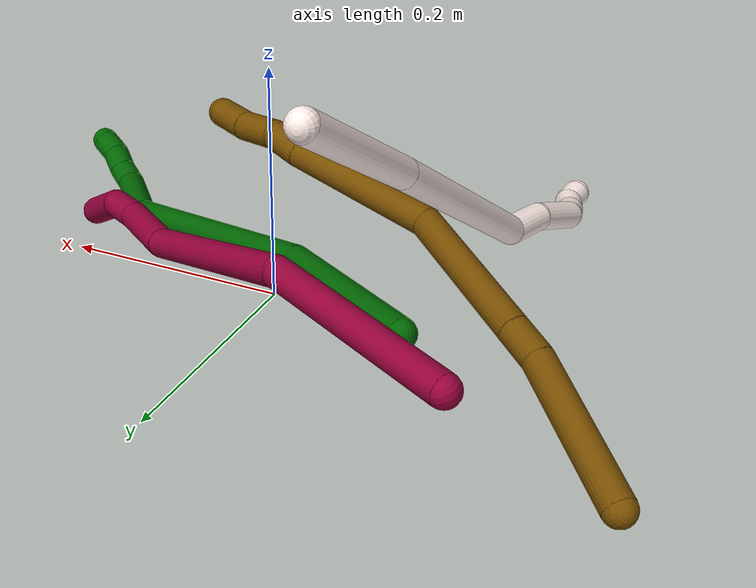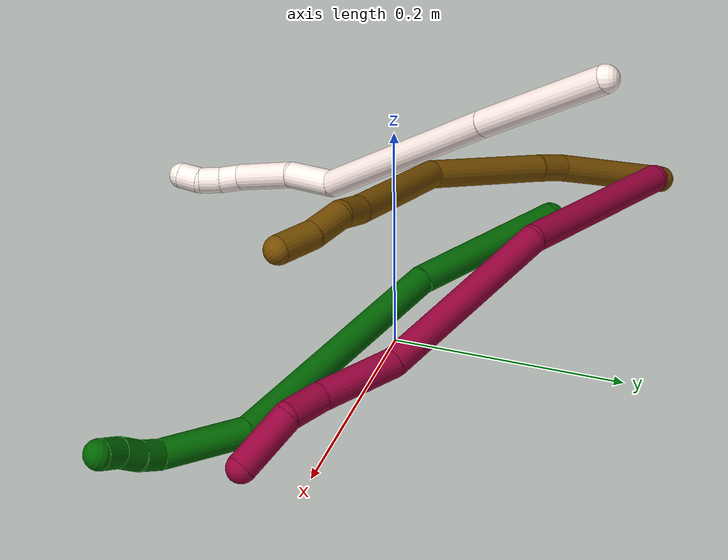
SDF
<sdf version="1.7">
 <world name="default">
  <model name="6">
   <static>0</static>
   <link name="6">
    <collision name="collision-cylinder-e_1_1_4">
     <pose>0.026106 -0.035467 0.059513 0.537443 0.36036 0.100241</pose>
     <geometry><cylinder><radius>0.0125</radius><length>0.148071</length></cylinder></geometry>
     <surface>
      <friction><ode><mu>1.16</mu><mu2>1.16</mu2><slip1>0</slip1><slip2>0</slip2></ode></friction>
      <contact><ode><kp>1e+06</kp><kd>1</kd><max_vel>0</max_vel><min_depth>0.001</min_depth></ode></contact>
     </surface>
    </collision>
    <visual name="visual-cylinder-e_1_1_4">
     <pose>0.026106 -0.035467 0.059513 0.537443 0.36036 0.100241</pose>
     <geometry><cylinder><radius>0.0125</radius><length>0.148071</length></cylinder></geometry>
     <material><ambient>0 0.392157 0.003922 1</ambient></material>
    </visual>
    <collision name="collision-cylinder-e_2_4_5">
     <pose>0.11264 -0.123166 0.194475 0.605526 0.582346 0.186682</pose>
     <geometry><cylinder><radius>0.0125</radius><length>0.219747</length></cylinder></geometry>
     <surface>
      <friction><ode><mu>1.16</mu><mu2>1.16</mu2><slip1>0</slip1><slip2>0</slip2></ode></friction>
      <contact><ode><kp>1e+06</kp><kd>1</kd><max_vel>0</max_vel><min_depth>0.001</min_depth></ode></contact>
     </surface>
    </collision>
    <visual name="visual-cylinder-e_2_4_5">
     <pose>0.11264 -0.123166 0.194475 0.605526 0.582346 0.186682</pose>
     <geometry><cylinder><radius>0.0125</radius><length>0.219747</length></cylinder></geometry>
     <material><ambient>0 0.392157 0.003922 1</ambient></material>
    </visual>
    <collision name="collision-cylinder-e_3_5_6">
     <pose>0.176782 -0.193529 0.300666 0.532873 0.103653 0.028313</pose>
     <geometry><cylinder><radius>0.0125</radius><length>0.071768</length></cylinder></geometry>
     <surface>
      <friction><ode><mu>1.16</mu><mu2>1.16</mu2><slip1>0</slip1><slip2>0</slip2></ode></friction>
      <contact><ode><kp>1e+06</kp><kd>1</kd><max_vel>0</max_vel><min_depth>0.001</min_depth></ode></contact>
     </surface>
    </collision>
    <visual name="visual-cylinder-e_3_5_6">
     <pose>0.176782 -0.193529 0.300666 0.532873 0.103653 0.028313</pose>
     <geometry><cylinder><radius>0.0125</radius><length>0.071768</length></cylinder></geometry>
     <material><ambient>0 0.392157 0.003922 1</ambient></material>
    </visual>
    <collision name="collision-cylinder-e_4_6_7">
     <pose>0.183158 -0.212122 0.341243 0.046827 0.264182 0.006223</pose>
     <geometry><cylinder><radius>0.0125</radius><length>0.020397</length></cylinder></geometry>
     <surface>
      <friction><ode><mu>1.16</mu><mu2>1.16</mu2><slip1>0</slip1><slip2>0</slip2></ode></friction>
      <contact><ode><kp>1e+06</kp><kd>1</kd><max_vel>0</max_vel><min_depth>0.001</min_depth></ode></contact>
     </surface>
    </collision>
    <visual name="visual-cylinder-e_4_6_7">
     <pose>0.183158 -0.212122 0.341243 0.046827 0.264182 0.006223</pose>
     <geometry><cylinder><radius>0.0125</radius><length>0.020397</length></cylinder></geometry>
     <material><ambient>0 0.392157 0.003922 1</ambient></material>
    </visual>
    <collision name="collision-cylinder-e_5_7_8">
     <pose>0.187067 -0.21183 0.360975 -0.075886 0.124886 -0.004747</pose>
     <geometry><cylinder><radius>0.0125</radius><length>0.02001</length></cylinder></geometry>
     <surface>
      <friction><ode><mu>1.16</mu><mu2>1.16</mu2><slip1>0</slip1><slip2>0</slip2></ode></friction>
      <contact><ode><kp>1e+06</kp><kd>1</kd><max_vel>0</max_vel><min_depth>0.001</min_depth></ode></contact>
     </surface>
    </collision>
    <visual name="visual-cylinder-e_5_7_8">
     <pose>0.187067 -0.21183 0.360975 -0.075886 0.124886 -0.004747</pose>
     <geometry><cylinder><radius>0.0125</radius><length>0.02001</length></cylinder></geometry>
     <material><ambient>0 0.392157 0.003922 1</ambient></material>
    </visual>
    <collision name="collision-cylinder-e_6_8_2">
     <pose>0.191989 -0.210814 0.380173 -0.028277 0.376291 -0.005384</pose>
     <geometry><cylinder><radius>0.0125</radius><length>0.020007</length></cylinder></geometry>
     <surface>
      <friction><ode><mu>1.16</mu><mu2>1.16</mu2><slip1>0</slip1><slip2>0</slip2></ode></friction>
      <contact><ode><kp>1e+06</kp><kd>1</kd><max_vel>0</max_vel><min_depth>0.001</min_depth></ode></contact>
     </surface>
    </collision>
    <visual name="visual-cylinder-e_6_8_2">
     <pose>0.191989 -0.210814 0.380173 -0.028277 0.376291 -0.005384</pose>
     <geometry><cylinder><radius>0.0125</radius><length>0.020007</length></cylinder></geometry>
     <material><ambient>0 0.392157 0.003922 1</ambient></material>
    </visual>
    <collision name="collision-sphere-2">
     <pose>0.195665 -0.210551 0.389473 0 -0 0</pose>
     <geometry><sphere><radius>0.0125</radius></sphere></geometry>
     <surface>
      <friction><ode><mu>1.16</mu><mu2>1.16</mu2><slip1>0</slip1><slip2>0</slip2></ode></friction>
      <contact><ode><kp>1e+06</kp><kd>1</kd><max_vel>0</max_vel><min_depth>0.001</min_depth></ode></contact>
     </surface>
    </collision>
    <visual name="visual-sphere-2">
     <pose>0.195665 -0.210551 0.389473 0 -0 0</pose>
     <geometry><sphere><radius>0.0125</radius></sphere></geometry>
     <material><ambient>0 0.392157 0.003922 1</ambient></material>
    </visual>
    <collision name="collision-sphere-4">
     <pose>0.052211 -0.070935 0.119026 0 -0 0</pose>
     <geometry><sphere><radius>0.0125</radius></sphere></geometry>
     <surface>
      <friction><ode><mu>1.16</mu><mu2>1.16</mu2><slip1>0</slip1><slip2>0</slip2></ode></friction>
      <contact><ode><kp>1e+06</kp><kd>1</kd><max_vel>0</max_vel><min_depth>0.001</min_depth></ode></contact>
     </surface>
    </collision>
    <visual name="visual-sphere-4">
     <pose>0.052211 -0.070935 0.119026 0 -0 0</pose>
     <geometry><sphere><radius>0.0125</radius></sphere></geometry>
     <material><ambient>0 0.392157 0.003922 1</ambient></material>
    </visual>
    <collision name="collision-sphere-1">
     <geometry><sphere><radius>0.0125</radius></sphere></geometry>
     <surface>
      <friction><ode><mu>1.16</mu><mu2>1.16</mu2><slip1>0</slip1><slip2>0</slip2></ode></friction>
      <contact><ode><kp>1e+06</kp><kd>1</kd><max_vel>0</max_vel><min_depth>0.001</min_depth></ode></contact>
     </surface>
    </collision>
    <visual name="visual-sphere-1">
     <geometry><sphere><radius>0.0125</radius></sphere></geometry>
     <material><ambient>0 0.392157 0.003922 1</ambient></material>
    </visual>
    <collision name="collision-sphere-8">
     <pose>0.188313 -0.211077 0.370873 0 -0 0</pose>
     <geometry><sphere><radius>0.0125</radius></sphere></geometry>
     <surface>
      <friction><ode><mu>1.16</mu><mu2>1.16</mu2><slip1>0</slip1><slip2>0</slip2></ode></friction>
      <contact><ode><kp>1e+06</kp><kd>1</kd><max_vel>0</max_vel><min_depth>0.001</min_depth></ode></contact>
     </surface>
    </collision>
    <visual name="visual-sphere-8">
     <pose>0.188313 -0.211077 0.370873 0 -0 0</pose>
     <geometry><sphere><radius>0.0125</radius></sphere></geometry>
     <material><ambient>0 0.392157 0.003922 1</ambient></material>
    </visual>
    <collision name="collision-sphere-5">
     <pose>0.173069 -0.175397 0.269923 0 -0 0</pose>
     <geometry><sphere><radius>0.0125</radius></sphere></geometry>
     <surface>
      <friction><ode><mu>1.16</mu><mu2>1.16</mu2><slip1>0</slip1><slip2>0</slip2></ode></friction>
      <contact><ode><kp>1e+06</kp><kd>1</kd><max_vel>0</max_vel><min_depth>0.001</min_depth></ode></contact>
     </surface>
    </collision>
    <visual name="visual-sphere-5">
     <pose>0.173069 -0.175397 0.269923 0 -0 0</pose>
     <geometry><sphere><radius>0.0125</radius></sphere></geometry>
     <material><ambient>0 0.392157 0.003922 1</ambient></material>
    </visual>
    <collision name="collision-sphere-6">
     <pose>0.180495 -0.211661 0.331409 0 -0 0</pose>
     <geometry><sphere><radius>0.0125</radius></sphere></geometry>
     <surface>
      <friction><ode><mu>1.16</mu><mu2>1.16</mu2><slip1>0</slip1><slip2>0</slip2></ode></friction>
      <contact><ode><kp>1e+06</kp><kd>1</kd><max_vel>0</max_vel><min_depth>0.001</min_depth></ode></contact>
     </surface>
    </collision>
    <visual name="visual-sphere-6">
     <pose>0.180495 -0.211661 0.331409 0 -0 0</pose>
     <geometry><sphere><radius>0.0125</radius></sphere></geometry>
     <material><ambient>0 0.392157 0.003922 1</ambient></material>
    </visual>
    <collision name="collision-sphere-7">
     <pose>0.185821 -0.212582 0.351076 0 -0 0</pose>
     <geometry><sphere><radius>0.0125</radius></sphere></geometry>
     <surface>
      <friction><ode><mu>1.16</mu><mu2>1.16</mu2><slip1>0</slip1><slip2>0</slip2></ode></friction>
      <contact><ode><kp>1e+06</kp><kd>1</kd><max_vel>0</max_vel><min_depth>0.001</min_depth></ode></contact>
     </surface>
    </collision>
    <visual name="visual-sphere-7">
     <pose>0.185821 -0.212582 0.351076 0 -0 0</pose>
     <geometry><sphere><radius>0.0125</radius></sphere></geometry>
     <material><ambient>0 0.392157 0.003922 1</ambient></material>
    </visual>
    <inertial>
     <pose>0.105251 -0.117979 0.18983 0 -0 0</pose>
     <mass>0.5</mass>
     <inertia>
      <ixx>0.001208</ixx>
      <ixy>0</ixy>
      <ixz>0</ixz>
      <iyy>0.001197</iyy>
      <iyz>0</iyz>
      <izz>1.1e-05</izz>
     </inertia>
    </inertial>
   </link>
   <pose>-0.15218 0.094486 0.055421 1.01227 0.21844 0.640787</pose>
  </model>
  <model name="8">
   <static>0</static>
   <link name="8">
    <collision name="collision-cylinder-e_1_1_4">
     <pose>0.070127 -0.040923 -0.024958 2.11845 0.971221 1.509</pose>
     <geometry><cylinder><radius>0.0125</radius><length>0.169888</length></cylinder></geometry>
     <surface>
      <friction><ode><mu>1.16</mu><mu2>1.16</mu2><slip1>0</slip1><slip2>0</slip2></ode></friction>
      <contact><ode><kp>1e+06</kp><kd>1</kd><max_vel>0</max_vel><min_depth>0.001</min_depth></ode></contact>
     </surface>
    </collision>
    <visual name="visual-cylinder-e_1_1_4">
     <pose>0.070127 -0.040923 -0.024958 2.11845 0.971221 1.509</pose>
     <geometry><cylinder><radius>0.0125</radius><length>0.169888</length></cylinder></geometry>
     <material><ambient>0.584314 0 0.227451 1</ambient></material>
    </visual>
    <collision name="collision-cylinder-e_2_4_5">
     <pose>0.2109 -0.130982 -0.047371 1.51906 0.962442 0.9206</pose>
     <geometry><cylinder><radius>0.0125</radius><length>0.172182</length></cylinder></geometry>
     <surface>
      <friction><ode><mu>1.16</mu><mu2>1.16</mu2><slip1>0</slip1><slip2>0</slip2></ode></friction>
      <contact><ode><kp>1e+06</kp><kd>1</kd><max_vel>0</max_vel><min_depth>0.001</min_depth></ode></contact>
     </surface>
    </collision>
    <visual name="visual-cylinder-e_2_4_5">
     <pose>0.2109 -0.130982 -0.047371 1.51906 0.962442 0.9206</pose>
     <geometry><cylinder><radius>0.0125</radius><length>0.172182</length></cylinder></geometry>
     <material><ambient>0.584314 0 0.227451 1</ambient></material>
    </visual>
    <collision name="collision-cylinder-e_3_5_6">
     <pose>0.313715 -0.192956 -0.048459 1.84655 1.17766 1.44676</pose>
     <geometry><cylinder><radius>0.0125</radius><length>0.069653</length></cylinder></geometry>
     <surface>
      <friction><ode><mu>1.16</mu><mu2>1.16</mu2><slip1>0</slip1><slip2>0</slip2></ode></friction>
      <contact><ode><kp>1e+06</kp><kd>1</kd><max_vel>0</max_vel><min_depth>0.001</min_depth></ode></contact>
     </surface>
    </collision>
    <visual name="visual-cylinder-e_3_5_6">
     <pose>0.313715 -0.192956 -0.048459 1.84655 1.17766 1.44676</pose>
     <geometry><cylinder><radius>0.0125</radius><length>0.069653</length></cylinder></geometry>
     <material><ambient>0.584314 0 0.227451 1</ambient></material>
    </visual>
    <collision name="collision-cylinder-e_4_6_7">
     <pose>0.360562 -0.213998 -0.05526 1.93932 1.03096 1.38096</pose>
     <geometry><cylinder><radius>0.0125</radius><length>0.034221</length></cylinder></geometry>
     <surface>
      <friction><ode><mu>1.16</mu><mu2>1.16</mu2><slip1>0</slip1><slip2>0</slip2></ode></friction>
      <contact><ode><kp>1e+06</kp><kd>1</kd><max_vel>0</max_vel><min_depth>0.001</min_depth></ode></contact>
     </surface>
    </collision>
    <visual name="visual-cylinder-e_4_6_7">
     <pose>0.360562 -0.213998 -0.05526 1.93932 1.03096 1.38096</pose>
     <geometry><cylinder><radius>0.0125</radius><length>0.034221</length></cylinder></geometry>
     <material><ambient>0.584314 0 0.227451 1</ambient></material>
    </visual>
    <collision name="collision-cylinder-e_5_7_2">
     <pose>0.396007 -0.237972 -0.051318 1.14724 0.87628 0.587864</pose>
     <geometry><cylinder><radius>0.0125</radius><length>0.054057</length></cylinder></geometry>
     <surface>
      <friction><ode><mu>1.16</mu><mu2>1.16</mu2><slip1>0</slip1><slip2>0</slip2></ode></friction>
      <contact><ode><kp>1e+06</kp><kd>1</kd><max_vel>0</max_vel><min_depth>0.001</min_depth></ode></contact>
     </surface>
    </collision>
    <visual name="visual-cylinder-e_5_7_2">
     <pose>0.396007 -0.237972 -0.051318 1.14724 0.87628 0.587864</pose>
     <geometry><cylinder><radius>0.0125</radius><length>0.054057</length></cylinder></geometry>
     <material><ambient>0.584314 0 0.227451 1</ambient></material>
    </visual>
    <collision name="collision-sphere-2">
     <pose>0.416775 -0.253742 -0.044209 0 -0 0</pose>
     <geometry><sphere><radius>0.0125</radius></sphere></geometry>
     <surface>
      <friction><ode><mu>1.16</mu><mu2>1.16</mu2><slip1>0</slip1><slip2>0</slip2></ode></friction>
      <contact><ode><kp>1e+06</kp><kd>1</kd><max_vel>0</max_vel><min_depth>0.001</min_depth></ode></contact>
     </surface>
    </collision>
    <visual name="visual-sphere-2">
     <pose>0.416775 -0.253742 -0.044209 0 -0 0</pose>
     <geometry><sphere><radius>0.0125</radius></sphere></geometry>
     <material><ambient>0.584314 0 0.227451 1</ambient></material>
    </visual>
    <collision name="collision-sphere-7">
     <pose>0.375239 -0.222202 -0.058428 0 -0 0</pose>
     <geometry><sphere><radius>0.0125</radius></sphere></geometry>
     <surface>
      <friction><ode><mu>1.16</mu><mu2>1.16</mu2><slip1>0</slip1><slip2>0</slip2></ode></friction>
      <contact><ode><kp>1e+06</kp><kd>1</kd><max_vel>0</max_vel><min_depth>0.001</min_depth></ode></contact>
     </surface>
    </collision>
    <visual name="visual-sphere-7">
     <pose>0.375239 -0.222202 -0.058428 0 -0 0</pose>
     <geometry><sphere><radius>0.0125</radius></sphere></geometry>
     <material><ambient>0.584314 0 0.227451 1</ambient></material>
    </visual>
    <collision name="collision-sphere-6">
     <pose>0.345885 -0.205794 -0.052092 0 -0 0</pose>
     <geometry><sphere><radius>0.0125</radius></sphere></geometry>
     <surface>
      <friction><ode><mu>1.16</mu><mu2>1.16</mu2><slip1>0</slip1><slip2>0</slip2></ode></friction>
      <contact><ode><kp>1e+06</kp><kd>1</kd><max_vel>0</max_vel><min_depth>0.001</min_depth></ode></contact>
     </surface>
    </collision>
    <visual name="visual-sphere-6">
     <pose>0.345885 -0.205794 -0.052092 0 -0 0</pose>
     <geometry><sphere><radius>0.0125</radius></sphere></geometry>
     <material><ambient>0.584314 0 0.227451 1</ambient></material>
    </visual>
    <collision name="collision-sphere-5">
     <pose>0.281545 -0.180119 -0.044827 0 -0 0</pose>
     <geometry><sphere><radius>0.0125</radius></sphere></geometry>
     <surface>
      <friction><ode><mu>1.16</mu><mu2>1.16</mu2><slip1>0</slip1><slip2>0</slip2></ode></friction>
      <contact><ode><kp>1e+06</kp><kd>1</kd><max_vel>0</max_vel><min_depth>0.001</min_depth></ode></contact>
     </surface>
    </collision>
    <visual name="visual-sphere-5">
     <pose>0.281545 -0.180119 -0.044827 0 -0 0</pose>
     <geometry><sphere><radius>0.0125</radius></sphere></geometry>
     <material><ambient>0.584314 0 0.227451 1</ambient></material>
    </visual>
    <collision name="collision-sphere-1">
     <geometry><sphere><radius>0.0125</radius></sphere></geometry>
     <surface>
      <friction><ode><mu>1.16</mu><mu2>1.16</mu2><slip1>0</slip1><slip2>0</slip2></ode></friction>
      <contact><ode><kp>1e+06</kp><kd>1</kd><max_vel>0</max_vel><min_depth>0.001</min_depth></ode></contact>
     </surface>
    </collision>
    <visual name="visual-sphere-1">
     <geometry><sphere><radius>0.0125</radius></sphere></geometry>
     <material><ambient>0.584314 0 0.227451 1</ambient></material>
    </visual>
    <collision name="collision-sphere-4">
     <pose>0.140255 -0.081846 -0.049916 0 -0 0</pose>
     <geometry><sphere><radius>0.0125</radius></sphere></geometry>
     <surface>
      <friction><ode><mu>1.16</mu><mu2>1.16</mu2><slip1>0</slip1><slip2>0</slip2></ode></friction>
      <contact><ode><kp>1e+06</kp><kd>1</kd><max_vel>0</max_vel><min_depth>0.001</min_depth></ode></contact>
     </surface>
    </collision>
    <visual name="visual-sphere-4">
     <pose>0.140255 -0.081846 -0.049916 0 -0 0</pose>
     <geometry><sphere><radius>0.0125</radius></sphere></geometry>
     <material><ambient>0.584314 0 0.227451 1</ambient></material>
    </visual>
    <inertial>
     <pose>0.207648 -0.126265 -0.040874 0 -0 0</pose>
     <mass>0.5</mass>
     <inertia>
      <ixx>0.000657</ixx>
      <ixy>0</ixy>
      <ixz>0</ixz>
      <iyy>0.001045</iyy>
      <iyz>0</iyz>
      <izz>-0.000276</izz>
     </inertia>
    </inertial>
   </link>
   <pose>-0.213065 0.174133 0.075617 2.74228 0.014921 -1.02291</pose>
  </model>
  <model name="11">
   <static>0</static>
   <link name="11">
    <collision name="collision-cylinder-e_1_1_4">
     <pose>-0.025129 -0.022036 -0.057716 2.77688 -0.386315 -1.62968</pose>
     <geometry><cylinder><radius>0.0125</radius><length>0.13339</length></cylinder></geometry>
     <surface>
      <friction><ode><mu>1.16</mu><mu2>1.16</mu2><slip1>0</slip1><slip2>0</slip2></ode></friction>
      <contact><ode><kp>1e+06</kp><kd>1</kd><max_vel>0</max_vel><min_depth>0.001</min_depth></ode></contact>
     </surface>
    </collision>
    <visual name="visual-cylinder-e_1_1_4">
     <pose>-0.025129 -0.022036 -0.057716 2.77688 -0.386315 -1.62968</pose>
     <geometry><cylinder><radius>0.0125</radius><length>0.13339</length></cylinder></geometry>
     <material><ambient>1 0.933333 0.909804 1</ambient></material>
    </visual>
    <collision name="collision-cylinder-e_2_4_5">
     <pose>-0.089248 -0.078445 -0.197667 2.74567 -0.412363 -1.61259</pose>
     <geometry><cylinder><radius>0.0125</radius><length>0.194569</length></cylinder></geometry>
     <surface>
      <friction><ode><mu>1.16</mu><mu2>1.16</mu2><slip1>0</slip1><slip2>0</slip2></ode></friction>
      <contact><ode><kp>1e+06</kp><kd>1</kd><max_vel>0</max_vel><min_depth>0.001</min_depth></ode></contact>
     </surface>
    </collision>
    <visual name="visual-cylinder-e_2_4_5">
     <pose>-0.089248 -0.078445 -0.197667 2.74567 -0.412363 -1.61259</pose>
     <geometry><cylinder><radius>0.0125</radius><length>0.194569</length></cylinder></geometry>
     <material><ambient>1 0.933333 0.909804 1</ambient></material>
    </visual>
    <collision name="collision-cylinder-e_3_5_6">
     <pose>-0.126287 -0.120769 -0.301769 2.7929 0.083592 0.466237</pose>
     <geometry><cylinder><radius>0.0125</radius><length>0.046698</length></cylinder></geometry>
     <surface>
      <friction><ode><mu>1.16</mu><mu2>1.16</mu2><slip1>0</slip1><slip2>0</slip2></ode></friction>
      <contact><ode><kp>1e+06</kp><kd>1</kd><max_vel>0</max_vel><min_depth>0.001</min_depth></ode></contact>
     </surface>
    </collision>
    <visual name="visual-cylinder-e_3_5_6">
     <pose>-0.126287 -0.120769 -0.301769 2.7929 0.083592 0.466237</pose>
     <geometry><cylinder><radius>0.0125</radius><length>0.046698</length></cylinder></geometry>
     <material><ambient>1 0.933333 0.909804 1</ambient></material>
    </visual>
    <collision name="collision-cylinder-e_4_6_7">
     <pose>-0.129184 -0.1402 -0.352953 2.76832 -0.152723 -0.769915</pose>
     <geometry><cylinder><radius>0.0125</radius><length>0.063711</length></cylinder></geometry>
     <surface>
      <friction><ode><mu>1.16</mu><mu2>1.16</mu2><slip1>0</slip1><slip2>0</slip2></ode></friction>
      <contact><ode><kp>1e+06</kp><kd>1</kd><max_vel>0</max_vel><min_depth>0.001</min_depth></ode></contact>
     </surface>
    </collision>
    <visual name="visual-cylinder-e_4_6_7">
     <pose>-0.129184 -0.1402 -0.352953 2.76832 -0.152723 -0.769915</pose>
     <geometry><cylinder><radius>0.0125</radius><length>0.063711</length></cylinder></geometry>
     <material><ambient>1 0.933333 0.909804 1</ambient></material>
    </visual>
    <collision name="collision-cylinder-e_5_7_8">
     <pose>-0.134944 -0.150836 -0.392509 -3.05925 -0.088746 1.64567</pose>
     <geometry><cylinder><radius>0.0125</radius><length>0.020629</length></cylinder></geometry>
     <surface>
      <friction><ode><mu>1.16</mu><mu2>1.16</mu2><slip1>0</slip1><slip2>0</slip2></ode></friction>
      <contact><ode><kp>1e+06</kp><kd>1</kd><max_vel>0</max_vel><min_depth>0.001</min_depth></ode></contact>
     </surface>
    </collision>
    <visual name="visual-cylinder-e_5_7_8">
     <pose>-0.134944 -0.150836 -0.392509 -3.05925 -0.088746 1.64567</pose>
     <geometry><cylinder><radius>0.0125</radius><length>0.020629</length></cylinder></geometry>
     <material><ambient>1 0.933333 0.909804 1</ambient></material>
    </visual>
    <collision name="collision-cylinder-e_6_8_9">
     <pose>-0.135238 -0.147989 -0.412899 -2.94688 0.059927 -0.595518</pose>
     <geometry><cylinder><radius>0.0125</radius><length>0.02073</length></cylinder></geometry>
     <surface>
      <friction><ode><mu>1.16</mu><mu2>1.16</mu2><slip1>0</slip1><slip2>0</slip2></ode></friction>
      <contact><ode><kp>1e+06</kp><kd>1</kd><max_vel>0</max_vel><min_depth>0.001</min_depth></ode></contact>
     </surface>
    </collision>
    <visual name="visual-cylinder-e_6_8_9">
     <pose>-0.135238 -0.147989 -0.412899 -2.94688 0.059927 -0.595518</pose>
     <geometry><cylinder><radius>0.0125</radius><length>0.02073</length></cylinder></geometry>
     <material><ambient>1 0.933333 0.909804 1</ambient></material>
    </visual>
    <collision name="collision-cylinder-e_7_9_2">
     <pose>-0.132526 -0.147953 -0.432772 2.94206 0.207738 1.61136</pose>
     <geometry><cylinder><radius>0.0125</radius><length>0.020273</length></cylinder></geometry>
     <surface>
      <friction><ode><mu>1.16</mu><mu2>1.16</mu2><slip1>0</slip1><slip2>0</slip2></ode></friction>
      <contact><ode><kp>1e+06</kp><kd>1</kd><max_vel>0</max_vel><min_depth>0.001</min_depth></ode></contact>
     </surface>
    </collision>
    <visual name="visual-cylinder-e_7_9_2">
     <pose>-0.132526 -0.147953 -0.432772 2.94206 0.207738 1.61136</pose>
     <geometry><cylinder><radius>0.0125</radius><length>0.020273</length></cylinder></geometry>
     <material><ambient>1 0.933333 0.909804 1</ambient></material>
    </visual>
    <collision name="collision-sphere-2">
     <pose>-0.130436 -0.149919 -0.442493 0 -0 0</pose>
     <geometry><sphere><radius>0.0125</radius></sphere></geometry>
     <surface>
      <friction><ode><mu>1.16</mu><mu2>1.16</mu2><slip1>0</slip1><slip2>0</slip2></ode></friction>
      <contact><ode><kp>1e+06</kp><kd>1</kd><max_vel>0</max_vel><min_depth>0.001</min_depth></ode></contact>
     </surface>
    </collision>
    <visual name="visual-sphere-2">
     <pose>-0.130436 -0.149919 -0.442493 0 -0 0</pose>
     <geometry><sphere><radius>0.0125</radius></sphere></geometry>
     <material><ambient>1 0.933333 0.909804 1</ambient></material>
    </visual>
    <collision name="collision-sphere-9">
     <pose>-0.134617 -0.145988 -0.42305 0 -0 0</pose>
     <geometry><sphere><radius>0.0125</radius></sphere></geometry>
     <surface>
      <friction><ode><mu>1.16</mu><mu2>1.16</mu2><slip1>0</slip1><slip2>0</slip2></ode></friction>
      <contact><ode><kp>1e+06</kp><kd>1</kd><max_vel>0</max_vel><min_depth>0.001</min_depth></ode></contact>
     </surface>
    </collision>
    <visual name="visual-sphere-9">
     <pose>-0.134617 -0.145988 -0.42305 0 -0 0</pose>
     <geometry><sphere><radius>0.0125</radius></sphere></geometry>
     <material><ambient>1 0.933333 0.909804 1</ambient></material>
    </visual>
    <collision name="collision-sphere-4">
     <pose>-0.050258 -0.044071 -0.115432 0 -0 0</pose>
     <geometry><sphere><radius>0.0125</radius></sphere></geometry>
     <surface>
      <friction><ode><mu>1.16</mu><mu2>1.16</mu2><slip1>0</slip1><slip2>0</slip2></ode></friction>
      <contact><ode><kp>1e+06</kp><kd>1</kd><max_vel>0</max_vel><min_depth>0.001</min_depth></ode></contact>
     </surface>
    </collision>
    <visual name="visual-sphere-4">
     <pose>-0.050258 -0.044071 -0.115432 0 -0 0</pose>
     <geometry><sphere><radius>0.0125</radius></sphere></geometry>
     <material><ambient>1 0.933333 0.909804 1</ambient></material>
    </visual>
    <collision name="collision-sphere-1">
     <geometry><sphere><radius>0.0125</radius></sphere></geometry>
     <surface>
      <friction><ode><mu>1.16</mu><mu2>1.16</mu2><slip1>0</slip1><slip2>0</slip2></ode></friction>
      <contact><ode><kp>1e+06</kp><kd>1</kd><max_vel>0</max_vel><min_depth>0.001</min_depth></ode></contact>
     </surface>
    </collision>
    <visual name="visual-sphere-1">
     <geometry><sphere><radius>0.0125</radius></sphere></geometry>
     <material><ambient>1 0.933333 0.909804 1</ambient></material>
    </visual>
    <collision name="collision-sphere-8">
     <pose>-0.135859 -0.149991 -0.402748 0 -0 0</pose>
     <geometry><sphere><radius>0.0125</radius></sphere></geometry>
     <surface>
      <friction><ode><mu>1.16</mu><mu2>1.16</mu2><slip1>0</slip1><slip2>0</slip2></ode></friction>
      <contact><ode><kp>1e+06</kp><kd>1</kd><max_vel>0</max_vel><min_depth>0.001</min_depth></ode></contact>
     </surface>
    </collision>
    <visual name="visual-sphere-8">
     <pose>-0.135859 -0.149991 -0.402748 0 -0 0</pose>
     <geometry><sphere><radius>0.0125</radius></sphere></geometry>
     <material><ambient>1 0.933333 0.909804 1</ambient></material>
    </visual>
    <collision name="collision-sphere-5">
     <pose>-0.128237 -0.112819 -0.279902 0 -0 0</pose>
     <geometry><sphere><radius>0.0125</radius></sphere></geometry>
     <surface>
      <friction><ode><mu>1.16</mu><mu2>1.16</mu2><slip1>0</slip1><slip2>0</slip2></ode></friction>
      <contact><ode><kp>1e+06</kp><kd>1</kd><max_vel>0</max_vel><min_depth>0.001</min_depth></ode></contact>
     </surface>
    </collision>
    <visual name="visual-sphere-5">
     <pose>-0.128237 -0.112819 -0.279902 0 -0 0</pose>
     <geometry><sphere><radius>0.0125</radius></sphere></geometry>
     <material><ambient>1 0.933333 0.909804 1</ambient></material>
    </visual>
    <collision name="collision-sphere-6">
     <pose>-0.124338 -0.128719 -0.323636 0 -0 0</pose>
     <geometry><sphere><radius>0.0125</radius></sphere></geometry>
     <surface>
      <friction><ode><mu>1.16</mu><mu2>1.16</mu2><slip1>0</slip1><slip2>0</slip2></ode></friction>
      <contact><ode><kp>1e+06</kp><kd>1</kd><max_vel>0</max_vel><min_depth>0.001</min_depth></ode></contact>
     </surface>
    </collision>
    <visual name="visual-sphere-6">
     <pose>-0.124338 -0.128719 -0.323636 0 -0 0</pose>
     <geometry><sphere><radius>0.0125</radius></sphere></geometry>
     <material><ambient>1 0.933333 0.909804 1</ambient></material>
    </visual>
    <collision name="collision-sphere-7">
     <pose>-0.13403 -0.151682 -0.38227 0 -0 0</pose>
     <geometry><sphere><radius>0.0125</radius></sphere></geometry>
     <surface>
      <friction><ode><mu>1.16</mu><mu2>1.16</mu2><slip1>0</slip1><slip2>0</slip2></ode></friction>
      <contact><ode><kp>1e+06</kp><kd>1</kd><max_vel>0</max_vel><min_depth>0.001</min_depth></ode></contact>
     </surface>
    </collision>
    <visual name="visual-sphere-7">
     <pose>-0.13403 -0.151682 -0.38227 0 -0 0</pose>
     <geometry><sphere><radius>0.0125</radius></sphere></geometry>
     <material><ambient>1 0.933333 0.909804 1</ambient></material>
    </visual>
    <inertial>
     <pose>-0.086237 -0.083907 -0.216336 0 -0 0</pose>
     <mass>0.5</mass>
     <inertia>
      <ixx>-0.000784</ixx>
      <ixy>0</ixy>
      <ixz>0</ixz>
      <iyy>-0.000644</iyy>
      <iyz>0</iyz>
      <izz>0.000592</izz>
     </inertia>
    </inertial>
   </link>
   <pose>-0.103919 0.147398 0.222605 0.807767 -1.37296 -2.2726</pose>
  </model>
  <model name="12">
   <static>0</static>
   <link name="12">
    <collision name="collision-cylinder-e_1_1_4">
     <pose>0.047853 0.001504 -0.036362 -3.10026 0.920591 -3.05827</pose>
     <geometry><cylinder><radius>0.0125</radius><length>0.120239</length></cylinder></geometry>
     <surface>
      <friction><ode><mu>1.16</mu><mu2>1.16</mu2><slip1>0</slip1><slip2>0</slip2></ode></friction>
      <contact><ode><kp>1e+06</kp><kd>1</kd><max_vel>0</max_vel><min_depth>0.001</min_depth></ode></contact>
     </surface>
    </collision>
    <visual name="visual-cylinder-e_1_1_4">
     <pose>0.047853 0.001504 -0.036362 -3.10026 0.920591 -3.05827</pose>
     <geometry><cylinder><radius>0.0125</radius><length>0.120239</length></cylinder></geometry>
     <material><ambient>0.466667 0.301961 0 1</ambient></material>
    </visual>
    <collision name="collision-cylinder-e_2_4_5">
     <pose>0.106947 0.006075 -0.081834 -2.81672 0.863371 -2.45802</pose>
     <geometry><cylinder><radius>0.0125</radius><length>0.029581</length></cylinder></geometry>
     <surface>
      <friction><ode><mu>1.16</mu><mu2>1.16</mu2><slip1>0</slip1><slip2>0</slip2></ode></friction>
      <contact><ode><kp>1e+06</kp><kd>1</kd><max_vel>0</max_vel><min_depth>0.001</min_depth></ode></contact>
     </surface>
    </collision>
    <visual name="visual-cylinder-e_2_4_5">
     <pose>0.106947 0.006075 -0.081834 -2.81672 0.863371 -2.45802</pose>
     <geometry><cylinder><radius>0.0125</radius><length>0.029581</length></cylinder></geometry>
     <material><ambient>0.466667 0.301961 0 1</ambient></material>
    </visual>
    <collision name="collision-cylinder-e_3_5_6">
     <pose>0.163536 0.01968 -0.131752 -2.88892 0.821958 -2.57441</pose>
     <geometry><cylinder><radius>0.0125</radius><length>0.123818</length></cylinder></geometry>
     <surface>
      <friction><ode><mu>1.16</mu><mu2>1.16</mu2><slip1>0</slip1><slip2>0</slip2></ode></friction>
      <contact><ode><kp>1e+06</kp><kd>1</kd><max_vel>0</max_vel><min_depth>0.001</min_depth></ode></contact>
     </surface>
    </collision>
    <visual name="visual-cylinder-e_3_5_6">
     <pose>0.163536 0.01968 -0.131752 -2.88892 0.821958 -2.57441</pose>
     <geometry><cylinder><radius>0.0125</radius><length>0.123818</length></cylinder></geometry>
     <material><ambient>0.466667 0.301961 0 1</ambient></material>
    </visual>
    <collision name="collision-cylinder-e_4_6_7">
     <pose>0.246883 0.066515 -0.207819 -2.34164 0.644101 -1.3363</pose>
     <geometry><cylinder><radius>0.0125</radius><length>0.126567</length></cylinder></geometry>
     <surface>
      <friction><ode><mu>1.16</mu><mu2>1.16</mu2><slip1>0</slip1><slip2>0</slip2></ode></friction>
      <contact><ode><kp>1e+06</kp><kd>1</kd><max_vel>0</max_vel><min_depth>0.001</min_depth></ode></contact>
     </surface>
    </collision>
    <visual name="visual-cylinder-e_4_6_7">
     <pose>0.246883 0.066515 -0.207819 -2.34164 0.644101 -1.3363</pose>
     <geometry><cylinder><radius>0.0125</radius><length>0.126567</length></cylinder></geometry>
     <material><ambient>0.466667 0.301961 0 1</ambient></material>
    </visual>
    <collision name="collision-cylinder-e_5_7_8">
     <pose>0.294539 0.110134 -0.250067 -2.33329 0.761878 -1.50515</pose>
     <geometry><cylinder><radius>0.0125</radius><length>0.027976</length></cylinder></geometry>
     <surface>
      <friction><ode><mu>1.16</mu><mu2>1.16</mu2><slip1>0</slip1><slip2>0</slip2></ode></friction>
      <contact><ode><kp>1e+06</kp><kd>1</kd><max_vel>0</max_vel><min_depth>0.001</min_depth></ode></contact>
     </surface>
    </collision>
    <visual name="visual-cylinder-e_5_7_8">
     <pose>0.294539 0.110134 -0.250067 -2.33329 0.761878 -1.50515</pose>
     <geometry><cylinder><radius>0.0125</radius><length>0.027976</length></cylinder></geometry>
     <material><ambient>0.466667 0.301961 0 1</ambient></material>
    </visual>
    <collision name="collision-cylinder-e_6_8_9">
     <pose>0.311695 0.125776 -0.270815 -2.59746 0.436416 -1.34313</pose>
     <geometry><cylinder><radius>0.0125</radius><length>0.035484</length></cylinder></geometry>
     <surface>
      <friction><ode><mu>1.16</mu><mu2>1.16</mu2><slip1>0</slip1><slip2>0</slip2></ode></friction>
      <contact><ode><kp>1e+06</kp><kd>1</kd><max_vel>0</max_vel><min_depth>0.001</min_depth></ode></contact>
     </surface>
    </collision>
    <visual name="visual-cylinder-e_6_8_9">
     <pose>0.311695 0.125776 -0.270815 -2.59746 0.436416 -1.34313</pose>
     <geometry><cylinder><radius>0.0125</radius><length>0.035484</length></cylinder></geometry>
     <material><ambient>0.466667 0.301961 0 1</ambient></material>
    </visual>
    <collision name="collision-cylinder-e_7_9_2">
     <pose>0.328982 0.140237 -0.298592 -2.72899 0.568978 -1.89924</pose>
     <geometry><cylinder><radius>0.0125</radius><length>0.036334</length></cylinder></geometry>
     <surface>
      <friction><ode><mu>1.16</mu><mu2>1.16</mu2><slip1>0</slip1><slip2>0</slip2></ode></friction>
      <contact><ode><kp>1e+06</kp><kd>1</kd><max_vel>0</max_vel><min_depth>0.001</min_depth></ode></contact>
     </surface>
    </collision>
    <visual name="visual-cylinder-e_7_9_2">
     <pose>0.328982 0.140237 -0.298592 -2.72899 0.568978 -1.89924</pose>
     <geometry><cylinder><radius>0.0125</radius><length>0.036334</length></cylinder></geometry>
     <material><ambient>0.466667 0.301961 0 1</ambient></material>
    </visual>
    <collision name="collision-sphere-2">
     <pose>0.33877 0.146374 -0.312613 0 -0 0</pose>
     <geometry><sphere><radius>0.0125</radius></sphere></geometry>
     <surface>
      <friction><ode><mu>1.16</mu><mu2>1.16</mu2><slip1>0</slip1><slip2>0</slip2></ode></friction>
      <contact><ode><kp>1e+06</kp><kd>1</kd><max_vel>0</max_vel><min_depth>0.001</min_depth></ode></contact>
     </surface>
    </collision>
    <visual name="visual-sphere-2">
     <pose>0.33877 0.146374 -0.312613 0 -0 0</pose>
     <geometry><sphere><radius>0.0125</radius></sphere></geometry>
     <material><ambient>0.466667 0.301961 0 1</ambient></material>
    </visual>
    <collision name="collision-sphere-9">
     <pose>0.319194 0.1341 -0.284572 0 -0 0</pose>
     <geometry><sphere><radius>0.0125</radius></sphere></geometry>
     <surface>
      <friction><ode><mu>1.16</mu><mu2>1.16</mu2><slip1>0</slip1><slip2>0</slip2></ode></friction>
      <contact><ode><kp>1e+06</kp><kd>1</kd><max_vel>0</max_vel><min_depth>0.001</min_depth></ode></contact>
     </surface>
    </collision>
    <visual name="visual-sphere-9">
     <pose>0.319194 0.1341 -0.284572 0 -0 0</pose>
     <geometry><sphere><radius>0.0125</radius></sphere></geometry>
     <material><ambient>0.466667 0.301961 0 1</ambient></material>
    </visual>
    <collision name="collision-sphere-4">
     <pose>0.095706 0.003007 -0.072725 0 -0 0</pose>
     <geometry><sphere><radius>0.0125</radius></sphere></geometry>
     <surface>
      <friction><ode><mu>1.16</mu><mu2>1.16</mu2><slip1>0</slip1><slip2>0</slip2></ode></friction>
      <contact><ode><kp>1e+06</kp><kd>1</kd><max_vel>0</max_vel><min_depth>0.001</min_depth></ode></contact>
     </surface>
    </collision>
    <visual name="visual-sphere-4">
     <pose>0.095706 0.003007 -0.072725 0 -0 0</pose>
     <geometry><sphere><radius>0.0125</radius></sphere></geometry>
     <material><ambient>0.466667 0.301961 0 1</ambient></material>
    </visual>
    <collision name="collision-sphere-1">
     <geometry><sphere><radius>0.0125</radius></sphere></geometry>
     <surface>
      <friction><ode><mu>1.16</mu><mu2>1.16</mu2><slip1>0</slip1><slip2>0</slip2></ode></friction>
      <contact><ode><kp>1e+06</kp><kd>1</kd><max_vel>0</max_vel><min_depth>0.001</min_depth></ode></contact>
     </surface>
    </collision>
    <visual name="visual-sphere-1">
     <geometry><sphere><radius>0.0125</radius></sphere></geometry>
     <material><ambient>0.466667 0.301961 0 1</ambient></material>
    </visual>
    <collision name="collision-sphere-8">
     <pose>0.304195 0.117452 -0.257058 0 -0 0</pose>
     <geometry><sphere><radius>0.0125</radius></sphere></geometry>
     <surface>
      <friction><ode><mu>1.16</mu><mu2>1.16</mu2><slip1>0</slip1><slip2>0</slip2></ode></friction>
      <contact><ode><kp>1e+06</kp><kd>1</kd><max_vel>0</max_vel><min_depth>0.001</min_depth></ode></contact>
     </surface>
    </collision>
    <visual name="visual-sphere-8">
     <pose>0.304195 0.117452 -0.257058 0 -0 0</pose>
     <geometry><sphere><radius>0.0125</radius></sphere></geometry>
     <material><ambient>0.466667 0.301961 0 1</ambient></material>
    </visual>
    <collision name="collision-sphere-5">
     <pose>0.118189 0.009144 -0.090943 0 -0 0</pose>
     <geometry><sphere><radius>0.0125</radius></sphere></geometry>
     <surface>
      <friction><ode><mu>1.16</mu><mu2>1.16</mu2><slip1>0</slip1><slip2>0</slip2></ode></friction>
      <contact><ode><kp>1e+06</kp><kd>1</kd><max_vel>0</max_vel><min_depth>0.001</min_depth></ode></contact>
     </surface>
    </collision>
    <visual name="visual-sphere-5">
     <pose>0.118189 0.009144 -0.090943 0 -0 0</pose>
     <geometry><sphere><radius>0.0125</radius></sphere></geometry>
     <material><ambient>0.466667 0.301961 0 1</ambient></material>
    </visual>
    <collision name="collision-sphere-6">
     <pose>0.208883 0.030216 -0.172561 0 -0 0</pose>
     <geometry><sphere><radius>0.0125</radius></sphere></geometry>
     <surface>
      <friction><ode><mu>1.16</mu><mu2>1.16</mu2><slip1>0</slip1><slip2>0</slip2></ode></friction>
      <contact><ode><kp>1e+06</kp><kd>1</kd><max_vel>0</max_vel><min_depth>0.001</min_depth></ode></contact>
     </surface>
    </collision>
    <visual name="visual-sphere-6">
     <pose>0.208883 0.030216 -0.172561 0 -0 0</pose>
     <geometry><sphere><radius>0.0125</radius></sphere></geometry>
     <material><ambient>0.466667 0.301961 0 1</ambient></material>
    </visual>
    <collision name="collision-sphere-7">
     <pose>0.284884 0.102815 -0.243076 0 -0 0</pose>
     <geometry><sphere><radius>0.0125</radius></sphere></geometry>
     <surface>
      <friction><ode><mu>1.16</mu><mu2>1.16</mu2><slip1>0</slip1><slip2>0</slip2></ode></friction>
      <contact><ode><kp>1e+06</kp><kd>1</kd><max_vel>0</max_vel><min_depth>0.001</min_depth></ode></contact>
     </surface>
    </collision>
    <visual name="visual-sphere-7">
     <pose>0.284884 0.102815 -0.243076 0 -0 0</pose>
     <geometry><sphere><radius>0.0125</radius></sphere></geometry>
     <material><ambient>0.466667 0.301961 0 1</ambient></material>
    </visual>
    <inertial>
     <pose>0.183334 0.047711 -0.153728 0 -0 0</pose>
     <mass>0.5</mass>
     <inertia>
      <ixx>-0.000342</ixx>
      <ixy>0</ixy>
      <ixz>0</ixz>
      <iyy>0.000147</iyy>
      <iyz>0</iyz>
      <izz>-0.000515</izz>
     </inertia>
    </inertial>
   </link>
   <pose>-0.326249 0.160389 0.012222 0.038483 -0.987968 -0.853058</pose>
  </model>
 </world>
</sdf>
